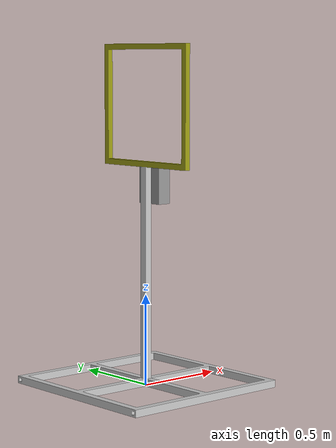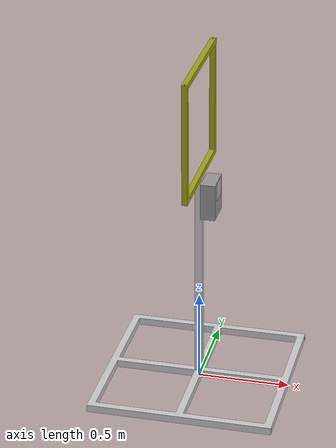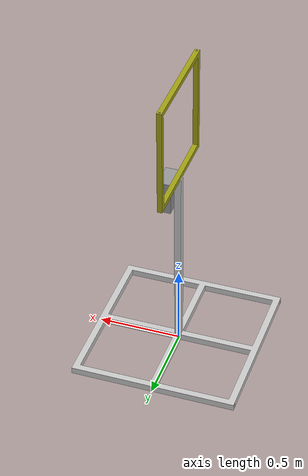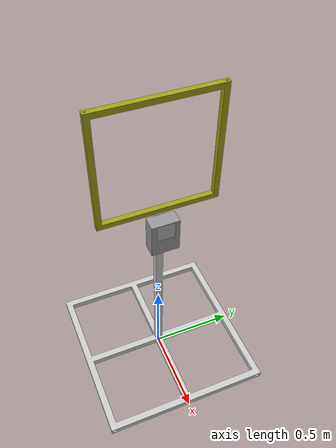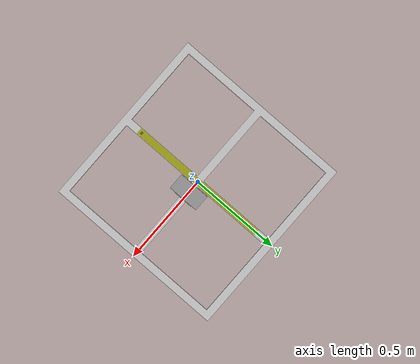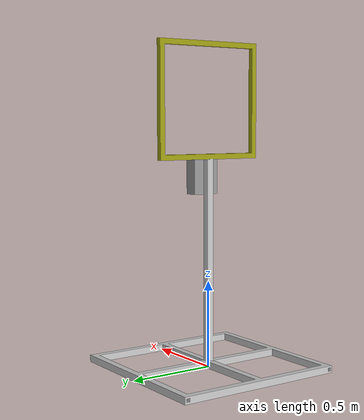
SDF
<?xml version="1.0" ?>
<sdf version="1.5">
  <model name='tc6_ring_3'>

  <include>
    <uri>model://tc6_ring</uri>
    <pose>0 0 0 0 0 0</pose>
  </include>

  <include>
    <uri>model://tc6_box</uri>
    <pose>0.1 0 1.0 0 0 0</pose>
  </include>

  <include>
    <uri>model://apriltag_3</uri>
    <pose>0.105 0 1.1 0 0 0</pose>
  </include>

  <joint name="box_joint" type="fixed">
      <child>tc6_box::box</child>
      <parent>tc6_ring::tc6_ring</parent>
  </joint>

  <joint name="tag_joint" type="fixed">
      <child>apriltag_3::link</child>
      <parent>tc6_box::box</parent>
  </joint>

  </model>
</sdf>

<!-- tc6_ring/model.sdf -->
<sdf version="1.5">
  <model name='tc6_ring'>
    <link name='tc6_ring'>
      <pose>0 0 0 1.5708 -0 0</pose>
      <inertial>
        <mass>10.176</mass>
        <inertia>
          <ixx>4.83082</ixx>
          <ixy>-2.29503e-18</ixy>
          <ixz>5.55112e-17</ixz>
          <iyy>4.69731</iyy>
          <iyz>-1.62639e-16</iyz>
          <izz>1.70858</izz>
        </inertia>
      </inertial>
      <collision name='tc6_ring_collision'>
        <geometry>
          <mesh>
            <scale>1 1 1</scale>
            <uri>model://tc6_ring/meshes/tc6_ring.dae</uri>
          </mesh>
        </geometry>
      </collision>
      <visual name='tc6_ring_visual'>
        <geometry>
          <mesh>
            <scale>1 1 1</scale>
            <uri>model://tc6_ring/meshes/tc6_ring.dae</uri>
          </mesh>
        </geometry>
      </visual>
    </link>
  </model>
</sdf>

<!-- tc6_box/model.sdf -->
<sdf version='1.5'>
  <model name='tc6_box'>
    <static>true</static>
    <link name='box'>
      <pose>-0.037286 0 0.1 0 -0 0</pose>
      <visual name='visual'>
        <geometry>
          <box>
            <size>0.08 0.155 0.2</size>
          </box>
        </geometry>
        <material>
          <lighting>1</lighting>
          <script>
            <uri>file://media/materials/scripts/gazebo.material</uri>
            <name>Gazebo/Grey</name>
          </script>
          <shader type='vertex'>
            <normal_map>__default__</normal_map>
          </shader>
          <ambient>0.194 0.187 0.169 1</ambient>
          <diffuse>0.7 0.7 0.7 1</diffuse>
          <specular>0.01 0.01 0.01 1</specular>
          <emissive>0 0 0 1</emissive>
        </material>
        <transparency>0</transparency>
        <cast_shadows>1</cast_shadows>
      </visual>
      <collision name='collision'>
        <geometry>
          <box>
            <size>0.08 0.155 0.2</size>
          </box>
        </geometry>
      </collision>
    </link>

    <static>0</static>
    <allow_auto_disable>1</allow_auto_disable>

  </model>
</sdf>

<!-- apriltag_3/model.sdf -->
<sdf version="1.5">
  <model name="apriltag_3">
    <static>true</static>
    <link name="link">
      <pose>0 0 0.05 0 0 0</pose>
      <collision name="collision">
        <geometry>
          <box>
            <size>0.001 0.1 0.1</size>
          </box>
        </geometry>
      </collision>
      <visual name="visual">
        <geometry>
          <box>
            <size>0.001 0.1 0.1</size>
          </box>
        </geometry>
        <material>
          <script>
            <uri>model://apriltag_3/materials/scripts</uri>
            <uri>model://apriltag_3/materials/textures</uri>
            <name>apriltag_3/Diffuse</name>
          </script>
        </material>
      </visual>
    </link>
  </model>
</sdf>
